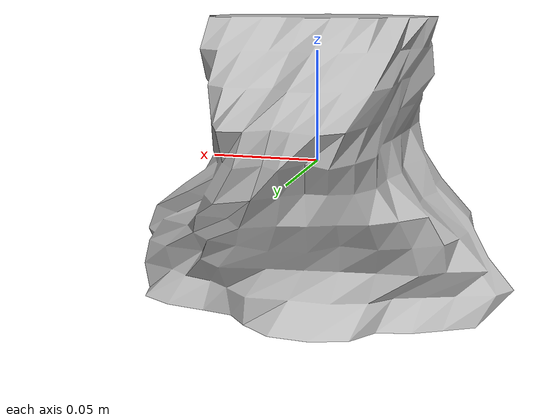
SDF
<?xml version="1.0"?>
<sdf version="1.6">
  <model name="waste_metal_crushed_can">
    <static>false</static>
    <allow_auto_disable>false</allow_auto_disable>

    <link name="link">
      <pose>0 0 0 0 0 0</pose>

      <inertial>
        <mass>0.09</mass>
        <inertia>
          <ixx>0.0008</ixx>
          <iyy>0.0008</iyy>
          <izz>0.0008</izz>
          <ixy>0</ixy>
          <ixz>0</ixz>
          <iyz>0</iyz>
        </inertia>
      </inertial>

      <!--
        Simplified collision is used for stability.
        Visual mesh gives realistic shape, collision box keeps Gazebo physics robust.
      -->
      <collision name="collision">
        <geometry>
          <box>
            <size>0.16 0.15 0.14</size>
          </box>
        </geometry>
        <surface>
          <friction>
            <ode>
              <mu>8.0</mu>
              <mu2>8.0</mu2>
            </ode>
          </friction>
        </surface>
      </collision>

      <visual name="visual">
        <geometry>
          <mesh>
            <uri>model://realistic_waste/waste_metal_crushed_can/meshes/metal_crushed_can.obj</uri>
            <scale>1 1 1</scale>
          </mesh>
        </geometry>
        <material>
          <ambient>0.72 0.72 0.72 1.0</ambient>
          <diffuse>0.72 0.72 0.72 1.0</diffuse>
          <specular>0.15 0.15 0.15 1</specular>
        </material>
      </visual>
    </link>
  </model>
</sdf>
